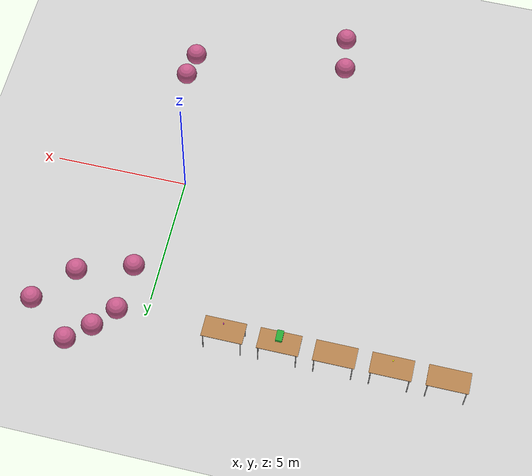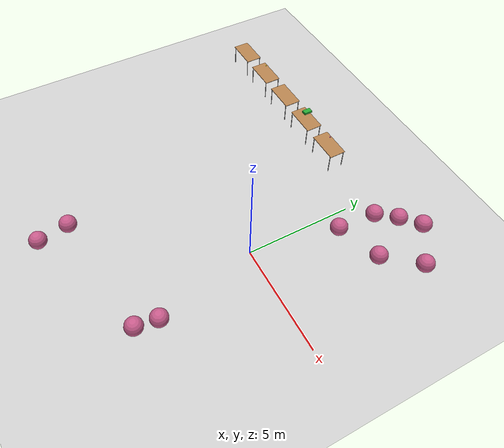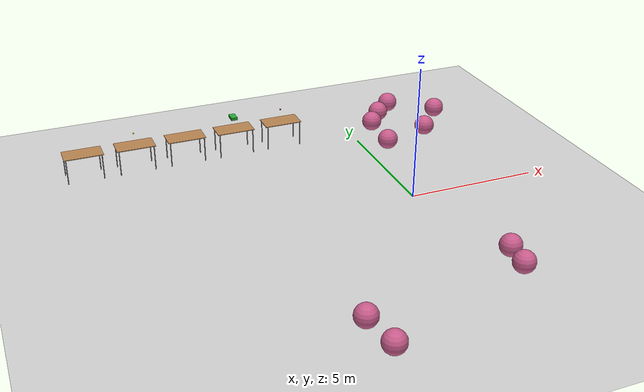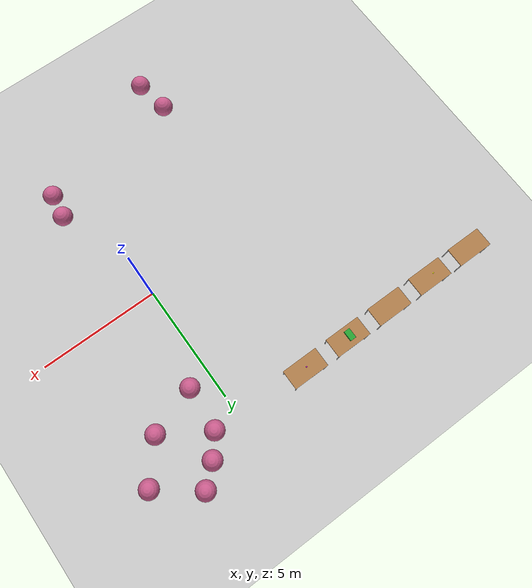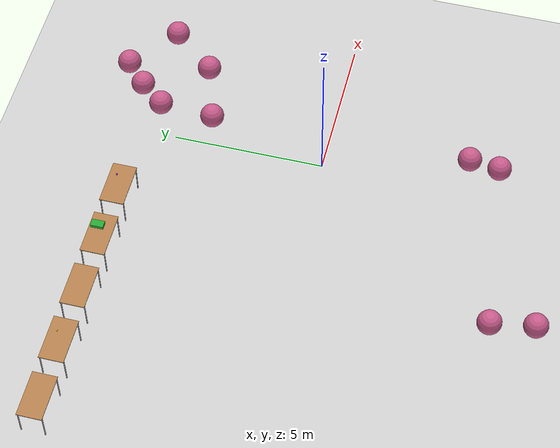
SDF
<sdf version="1.8">
 <world name="sample_world">
  <physics name="1ms" type="ignored">
   <max_step_size>0.001</max_step_size>
   <real_time_factor>1.0</real_time_factor>
  </physics>
  <plugin filename="libignition-gazebo-physics-system.so" name="ignition::gazebo::systems::Physics"/>
  <plugin filename="libignition-gazebo-user-commands-system.so" name="ignition::gazebo::systems::UserCommands"/>
  <plugin filename="libignition-gazebo-scene-broadcaster-system.so" name="ignition::gazebo::systems::SceneBroadcaster"/>
  <plugin filename="libignition-gazebo-contact-system.so" name="ignition::gazebo::systems::Contact"/>
  <light type="directional" name="sun">
   <pose>0 0 10 0 0 0</pose>
   <diffuse>0.8 0.8 0.8 1</diffuse>
   <specular>0.2 0.2 0.2 1</specular>
   <attenuation>
    <range>1000</range>
    <constant>0.9</constant>
    <linear>0.01</linear>
    <quadratic>0.001</quadratic>
   </attenuation>
   <direction>-0.5 0.1 -0.9</direction>
  </light>
  <model name="ground_plane">
   <static>true</static>
   <link name="link">
    <collision name="collision">
     <geometry><plane><normal>0 0 1</normal><size>100 100</size></plane></geometry>
    </collision>
    <visual name="visual">
     <geometry><plane><normal>0 0 1</normal><size>100 100</size></plane></geometry>
     <material>
      <ambient>0.8 0.8 0.8 1</ambient>
      <diffuse>0.8 0.8 0.8 1</diffuse>
      <specular>0.8 0.8 0.8 1</specular>
     </material>
    </visual>
   </link>
  </model>
  <model name="Table1">
   <include><uri>model://table</uri><pose>-11 6 0 0 0 0</pose><static>true</static></include>
  </model>
  <model name="Table2">
   <include><uri>model://table</uri><pose>-9 6 0 0 0 0</pose><static>true</static></include>
  </model>
  <model name="Table3">
   <include><uri>model://table</uri><pose>-7 6 0 0 0 0</pose><static>true</static></include>
  </model>
  <model name="Table4">
   <include><uri>model://table</uri><pose>-5 6 0 0 0 0</pose><static>true</static></include>
  </model>
  <model name="Table5">
   <include><uri>model://table</uri><pose>-3 6 0 0 0 0</pose><static>true</static></include>
  </model>
  <include><uri>model://box_yellow</uri><pose>-9 6 1.5 0 0 0</pose><static>false</static></include>
  <include><uri>model://box_green</uri><pose>-5 6 1.5 0 0 0</pose><static>false</static></include>
  <include><uri>model://box_purple</uri><pose>-3 6 1.5 0 0 0</pose><static>false</static></include>
  <model name="Ball1">
   <include><uri>model://ball_pink</uri><pose>1.16 -4.72 0.4 0 0 0</pose><static>true</static></include>
  </model>
  <model name="Ball2">
   <include><uri>model://ball_pink</uri><pose>1.02 -5.73 0.4 0 0 0</pose><static>true</static></include>
  </model>
  <model name="Ball3">
   <include><uri>model://ball_pink</uri><pose>-4.89 -6.45 0.4 0 0 0</pose><static>true</static></include>
  </model>
  <model name="Ball4">
   <include><uri>model://ball_pink</uri><pose>-4.66 -7.86 0.4 0 0 0</pose><static>true</static></include>
  </model>
  <model name="Ball5">
   <include><uri>model://ball_pink</uri><pose>0.89 3.98 0.4 0 0 0</pose><static>true</static></include>
  </model>
  <model name="Ball6">
   <include><uri>model://ball_pink</uri><pose>1.02 5.8 0.4 0 0 0</pose><static>true</static></include>
  </model>
  <model name="Ball7">
   <include><uri>model://ball_pink</uri><pose>1.7 6.63 0.4 0 0 0</pose><static>true</static></include>
  </model>
  <model name="Ball8">
   <include><uri>model://ball_pink</uri><pose>2.5 7.35 0.4 0 0 0</pose><static>true</static></include>
  </model>
  <model name="Ball9">
   <include><uri>model://ball_pink</uri><pose>4.14 6.1 0.4 0 0 0</pose><static>true</static></include>
  </model>
  <model name="Ball10">
   <include><uri>model://ball_pink</uri><pose>2.89 4.63 0.4 0 0 0</pose><static>true</static></include>
  </model>
 </world>
</sdf>

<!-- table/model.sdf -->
<sdf version="1.5">
  <model name="table">
    <static>true</static>
    <link name="link">
      <collision name="surface">
        <pose>0 0 1.0 0 0 0</pose>
        <geometry>
          <box>
            <size>1.5 0.8 0.03</size>
          </box>
        </geometry>
        <surface>
          <friction>
            <ode>
              <mu>0.6</mu>
              <mu2>0.6</mu2>
            </ode>
          </friction>
        </surface>
      </collision>
      <visual name="visual1">
        <pose>0 0 1.0 0 0 0</pose>
        <geometry>
          <box>
            <size>1.5 0.8 0.03</size>
          </box>
        </geometry>
        <material>
          <script>
            <uri>model://media/materials/scripts/gazebo.material</uri>
            <name>Gazebo/Wood</name>
          </script>
        </material>
      </visual>
      <collision name="front_left_leg">
        <pose>0.68 0.38 0.5 0 0 0</pose>
        <geometry>
          <cylinder>
            <radius>0.02</radius>
            <length>1.0</length>
          </cylinder>
        </geometry>
      </collision>
      <visual name="front_left_leg">
        <pose>0.68 0.38 0.5 0 0 0</pose>
        <geometry>
          <cylinder>
            <radius>0.02</radius>
            <length>1.0</length>
          </cylinder>
        </geometry>
        <material>
          <script>
            <uri>model://media/materials/scripts/gazebo.material</uri>
            <name>Gazebo/Grey</name>
          </script>
        </material>
      </visual>
      <collision name="front_right_leg">
        <pose>0.68 -0.38 0.5 0 0 0</pose>
        <geometry>
          <cylinder>
            <radius>0.02</radius>
            <length>1.0</length>
          </cylinder>
        </geometry>
      </collision>
      <visual name="front_right_leg">
        <pose>0.68 -0.38 0.5 0 0 0</pose>
        <geometry>
          <cylinder>
            <radius>0.02</radius>
            <length>1.0</length>
          </cylinder>
        </geometry>
        <material>
          <script>
            <uri>model://media/materials/scripts/gazebo.material</uri>
            <name>Gazebo/Grey</name>
          </script>
        </material>
      </visual>
      <collision name="back_right_leg">
        <pose>-0.68 -0.38 0.5 0 0 0</pose>
        <geometry>
          <cylinder>
            <radius>0.02</radius>
            <length>1.0</length>
          </cylinder>
        </geometry>
      </collision>
      <visual name="back_right_leg">
        <pose>-0.68 -0.38 0.5 0 0 0</pose>
        <geometry>
          <cylinder>
            <radius>0.02</radius>
            <length>1.0</length>
          </cylinder>
        </geometry>
        <material>
          <script>
            <uri>model://media/materials/scripts/gazebo.material</uri>
            <name>Gazebo/Grey</name>
          </script>
        </material>
      </visual>
      <collision name="back_left_leg">
        <pose>-0.68 0.38 0.5 0 0 0</pose>
        <geometry>
          <cylinder>
            <radius>0.02</radius>
            <length>1.0</length>
          </cylinder>
        </geometry>
      </collision>
      <visual name="back_left_leg">
        <pose>-0.68 0.38 0.5 0 0 0</pose>
        <geometry>
          <cylinder>
            <radius>0.02</radius>
            <length>1.0</length>
          </cylinder>
        </geometry>
        <material>
          <script>
            <uri>model://media/materials/scripts/gazebo.material</uri>
            <name>Gazebo/Grey</name>
          </script>
        </material>
      </visual>
    </link>
  </model>
</sdf>

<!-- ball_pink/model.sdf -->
<sdf version='1.6'>
  <model name='ball_pink'>
    <link name='link_0'>
      <inertial>
        <mass>1</mass>
        <inertia>
          <ixx>0.1</ixx>
          <ixy>0</ixy>
          <ixz>0</ixz>
          <iyy>0.1</iyy>
          <iyz>0</iyz>
          <izz>0.1</izz>
        </inertia>
        <pose frame=''>0 0 0 0 -0 0</pose>
      </inertial>
      <pose frame=''>-0 -0 0 0 -0 0</pose>
      <gravity>1</gravity>
      <self_collide>0</self_collide>
      <kinematic>0</kinematic>
      <enable_wind>0</enable_wind>
      <visual name='visual'>
        <pose frame=''>0 0 0 0 -0 0</pose>
        <geometry>
          <sphere>
            <radius>0.4</radius>
          </sphere>
        </geometry>
        <material>
          <lighting>1</lighting>
          <script>
            <uri>file://media/materials/scripts/gazebo.material</uri>
            <name>Gazebo/Grey</name>
          </script>
          <shader type='pixel'>
            <normal_map>__default__</normal_map>
          </shader>
          <ambient>0.745 0.314 0.502 1</ambient>
          <diffuse>0.79 0.36 0.55 1</diffuse>
          <specular>0.01 0.01 0.01 1</specular>
          <emissive>0 0 0 1</emissive>
        </material>
        <transparency>0</transparency>
        <cast_shadows>1</cast_shadows>
      </visual>
      <collision name='collision'>
        <laser_retro>0</laser_retro>
        <max_contacts>10</max_contacts>
        <pose frame=''>0 0 0 0 -0 0</pose>
        <geometry>
          <sphere>
            <radius>0.4</radius>
          </sphere>
        </geometry>
        <surface>
          <friction>
            <ode>
              <mu>1</mu>
              <mu2>1</mu2>
              <fdir1>0 0 0</fdir1>
              <slip1>0</slip1>
              <slip2>0</slip2>
            </ode>
            <torsional>
              <coefficient>1</coefficient>
              <patch_radius>0</patch_radius>
              <surface_radius>0</surface_radius>
              <use_patch_radius>1</use_patch_radius>
              <ode>
                <slip>0</slip>
              </ode>
            </torsional>
          </friction>
          <bounce>
            <restitution_coefficient>0</restitution_coefficient>
            <threshold>1e+06</threshold>
          </bounce>
          <contact>
            <collide_without_contact>0</collide_without_contact>
            <collide_without_contact_bitmask>1</collide_without_contact_bitmask>
            <collide_bitmask>1</collide_bitmask>
            <ode>
              <soft_cfm>0</soft_cfm>
              <soft_erp>0.2</soft_erp>
              <kp>1e+13</kp>
              <kd>1</kd>
              <max_vel>0.01</max_vel>
              <min_depth>0</min_depth>
            </ode>
            <bullet>
              <split_impulse>1</split_impulse>
              <split_impulse_penetration_threshold>-0.01</split_impulse_penetration_threshold>
              <soft_cfm>0</soft_cfm>
              <soft_erp>0.2</soft_erp>
              <kp>1e+13</kp>
              <kd>1</kd>
            </bullet>
          </contact>
        </surface>
      </collision>
    </link>
    <static>0</static>
    <allow_auto_disable>1</allow_auto_disable>
  </model>
</sdf>

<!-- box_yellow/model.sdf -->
<sdf version="1.5">
  <model name="boxyellow">
    <link name="base_link">
      <pose>0 0 0 0 0 0</pose>
      <inertial>
        <mass>0.010</mass>
        <inertia>
          <ixx>1e-5</ixx>
          <ixy>0</ixy>
          <ixz>0</ixz>
          <iyy>1e-5</iyy>
          <iyz>0</iyz>
          <izz>1e-5</izz>
        </inertia>
      </inertial>
      <collision name="collision">
        <geometry>
          <box>
            <size>0.04 0.04 0.04</size>
          </box>
        </geometry>
        <surface>
          <friction>
            <ode>
              <mu>50.0</mu>
              <mu2>50.0</mu2>
            </ode>
          </friction>
          <contact>
          	<ode>
          		<min_depth>0.001</min_depth>
          		<max_vel>0.0</max_vel>
          	</ode>
          </contact>
        </surface>
      </collision>
      <visual name="visual">
        <geometry>
          <box>
            <size>0.04 0.04 0.04</size>
          </box>
        </geometry>
        <material>
          <ambient>1.0 1.0 0.0 1</ambient>
          <diffuse>1.0 1.0 0.0 1</diffuse>
          <specular>0 0 0 0</specular>
          <emissive>0 0 0 1</emissive>
        </material>
      </visual>
    </link>
  </model>
</sdf>

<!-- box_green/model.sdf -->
<sdf version='1.7'>
  <model name='box_green'>
    <link name='link'>
      <inertial>
        <mass>3.5</mass>
        <inertia>
          <ixx>0.0527224</ixx>
          <ixy>0</ixy>
          <ixz>0</ixz>
          <iyy>0.0208089</iyy>
          <iyz>0</iyz>
          <izz>0.0659078</izz>
        </inertia>
        <pose>0 0 0 0 -0 0</pose>
      </inertial>
      <self_collide>0</self_collide>
      <enable_wind>0</enable_wind>
      <kinematic>0</kinematic>
      <pose>0 0 0 0 -0 0</pose>
      <gravity>1</gravity>
      <visual name='visual'>
        <geometry>
          <box>
            <size>0.241404 0.409504 0.114319</size>
          </box>
        </geometry>
        <material>
          <script>
            <name>Gazebo/Green</name>
            <uri>file://media/materials/scripts/gazebo.material</uri>
          </script>
          <shader type='pixel'>
            <normal_map>__default__</normal_map>
          </shader>
          <ambient>0.3 0.3 0.3 1</ambient>
          <diffuse>0.1 1 0.1 1</diffuse>
          <specular>0.01 0.01 0.01 1</specular>
          <emissive>0 0 0 1</emissive>
        </material>
        <pose>0 0 0 0 -0 0</pose>
        <transparency>0</transparency>
        <cast_shadows>1</cast_shadows>
      </visual>
      <collision name='collision'>
        <laser_retro>0</laser_retro>
        <max_contacts>20</max_contacts>
        <pose>0 0 0 0 -0 0</pose>
        <geometry>
          <box>
            <size>0.241404 0.409504 0.114319</size>
          </box>
        </geometry>
        <surface>
          <friction>
            <ode>
              <mu>0.6</mu>
              <mu2>0.6</mu2>
              <fdir1>0.707 0.707 0</fdir1>
              <slip1>0</slip1>
              <slip2>0</slip2>
            </ode>
            <torsional>
              <coefficient>0.6</coefficient>
              <patch_radius>0.5</patch_radius>
              <surface_radius>0.5</surface_radius>
              <use_patch_radius>0</use_patch_radius>
              <ode>
                <slip>0</slip>
              </ode>
            </torsional>
          </friction>
          <bounce>
            <restitution_coefficient>0.002</restitution_coefficient>
            <threshold>1e+06</threshold>
          </bounce>
          <contact>
            <collide_without_contact>0</collide_without_contact>
            <collide_without_contact_bitmask>1</collide_without_contact_bitmask>
            <collide_bitmask>1</collide_bitmask>
            <ode>
              <soft_cfm>0</soft_cfm>
              <soft_erp>0.2</soft_erp>
              <kp>1e+15</kp>
              <kd>1e+13</kd>
              <max_vel>0.01</max_vel>
              <min_depth>0</min_depth>
            </ode>
            <bullet>
              <split_impulse>1</split_impulse>
              <split_impulse_penetration_threshold>-0.01</split_impulse_penetration_threshold>
              <soft_cfm>0</soft_cfm>
              <soft_erp>0.2</soft_erp>
              <kp>1e+15</kp>
              <kd>1e+13</kd>
            </bullet>
          </contact>
        </surface>
      </collision>
    </link>
    <static>0</static>
    <allow_auto_disable>1</allow_auto_disable>
  </model>
</sdf>

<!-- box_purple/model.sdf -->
<sdf version="1.5">
  <model name="boxpurple">
    <link name="purple link">
      <pose>0 0 0.01 0 0 0</pose>
      <inertial>
        <mass>0.010</mass>
        <inertia>
          <ixx>1e-5</ixx>
          <ixy>0</ixy>
          <ixz>0</ixz>
          <iyy>1e-5</iyy>
          <iyz>0</iyz>
          <izz>1e-5</izz>
        </inertia>
      </inertial>
      <collision name="collision">
        <geometry>
          <box>
            <size>0.04 0.04 0.04</size>
          </box>
        </geometry>
        <surface>
          <friction>
            <ode>
              <mu>50.0</mu>
              <mu2>50.0</mu2>
            </ode>
          </friction>
          <contact>
          	<ode>
          		<min_depth>0.001</min_depth>
          		<max_vel>0.0</max_vel>
          	</ode>
          </contact>
        </surface>
      </collision>
      <visual name="visual">
        <geometry>
          <box>
            <size>0.04 0.04 0.04</size>
          </box>
        </geometry>
        <material> <!-- Wheel material -->
          <ambient>0.8 0.1 0.8 1</ambient>
          <diffuse>0.8 0.1 0.8 1</diffuse>
          <specular>0 0 0 0</specular>
          <emissive>0 0 0 1</emissive>
        </material> <!-- End wheel material -->
      </visual>
    </link>
  </model>
</sdf>
